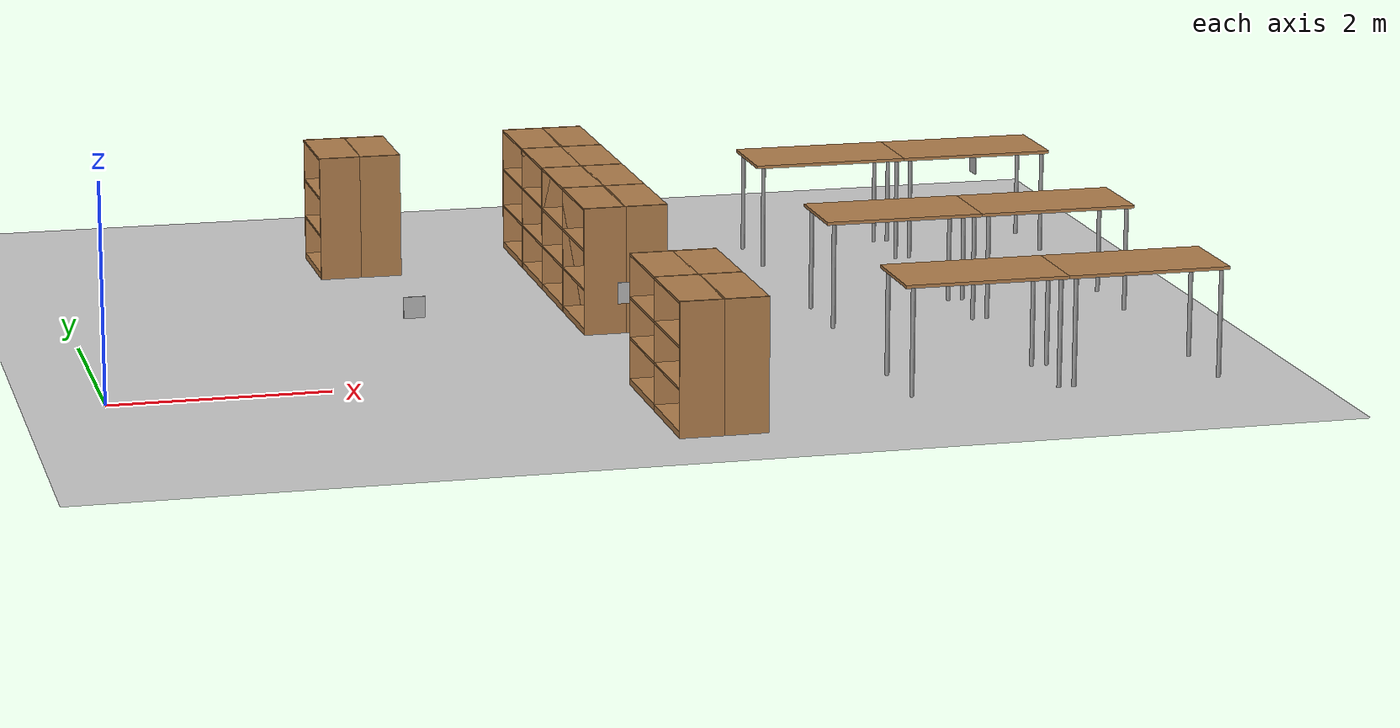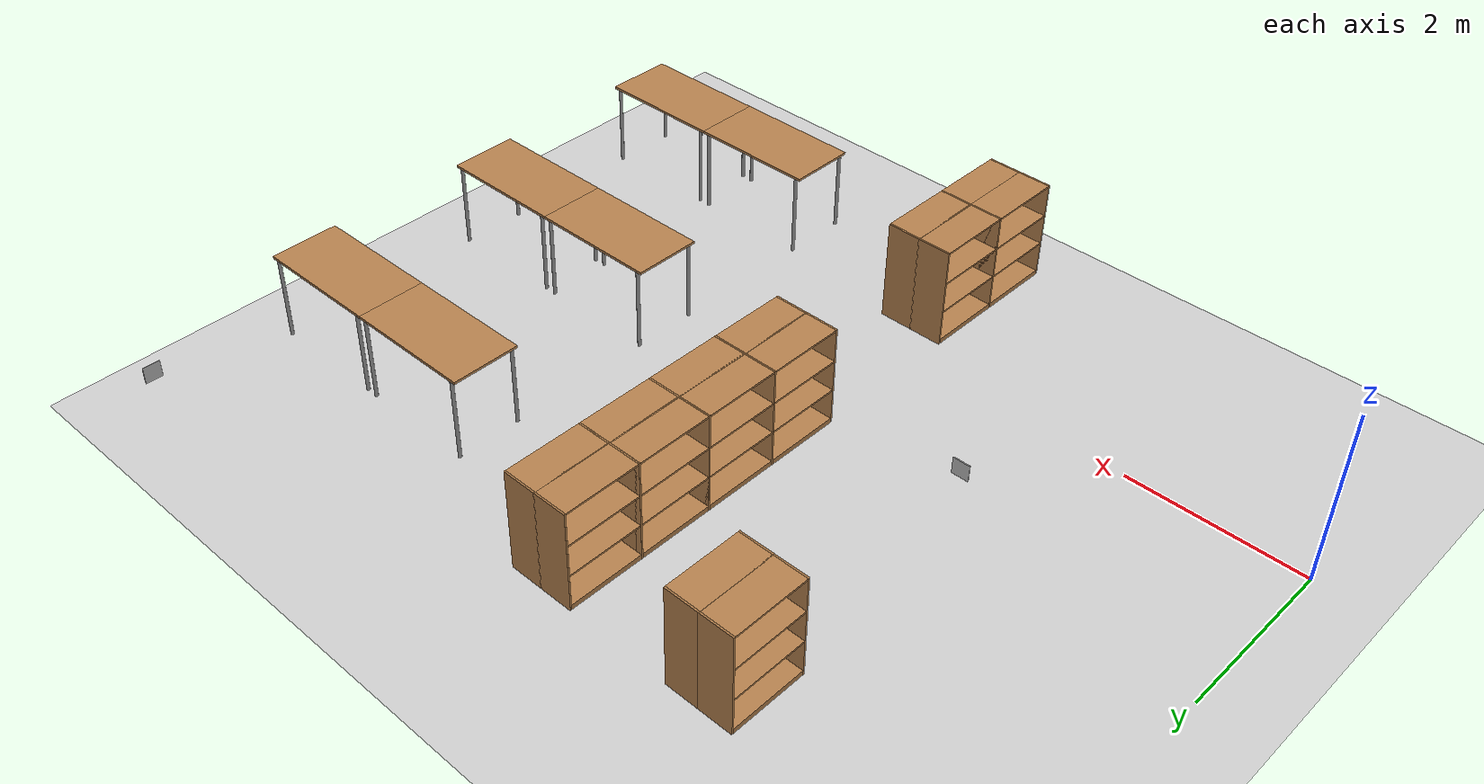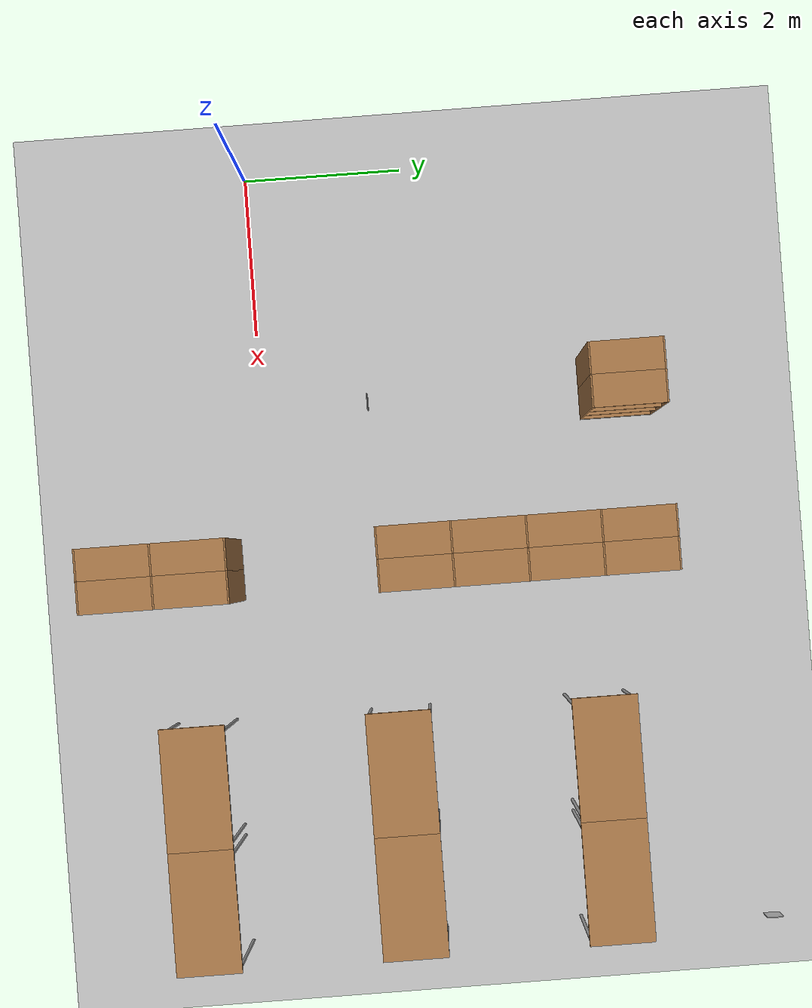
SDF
<sdf version="1.7">
 <world name="default">
  <model name="ground_plane">
   <static>1</static>
   <link name="link">
    <collision name="collision">
     <geometry><plane><normal>0 0 1</normal><size>100 100</size></plane></geometry>
     <surface><friction><ode><mu>100</mu><mu2>50</mu2></ode></friction></surface>
    </collision>
    <visual name="visual">
     <cast_shadows>0</cast_shadows>
     <geometry><plane><normal>0 0 1</normal><size>100 100</size></plane></geometry>
     <material>
      <script><uri>file://media/materials/scripts/gazebo.material</uri><name>Gazebo/Grey</name></script>
     </material>
    </visual>
   </link>
  </model>
  <model name="right_A_0">
   <static>1</static>
   <link name="link">
    <inertial><mass>1</mass></inertial>
    <visual name="visual1">
     <pose>0 0.005 0.6 0 -0 0</pose>
     <geometry><box><size>0.9 0.01 1.2</size></box></geometry>
     <material>
      <script><uri>file://media/materials/scripts/gazebo.material</uri><name>Gazebo/Wood</name></script>
     </material>
    </visual>
    <visual name="visual2">
     <pose>0.45 -0.195 0.6 0 -0 0</pose>
     <geometry><box><size>0.02 0.4 1.2</size></box></geometry>
     <material>
      <script><uri>file://media/materials/scripts/gazebo.material</uri><name>Gazebo/Wood</name></script>
     </material>
    </visual>
    <visual name="visual3">
     <pose>-0.45 -0.195 0.6 0 -0 0</pose>
     <geometry><box><size>0.02 0.4 1.2</size></box></geometry>
     <material>
      <script><uri>file://media/materials/scripts/gazebo.material</uri><name>Gazebo/Wood</name></script>
     </material>
    </visual>
    <visual name="visual4">
     <pose>0 -0.195 0.03 0 -0 0</pose>
     <geometry><box><size>0.88 0.4 0.06</size></box></geometry>
     <material>
      <script><uri>file://media/materials/scripts/gazebo.material</uri><name>Gazebo/Wood</name></script>
     </material>
    </visual>
    <visual name="visual5">
     <pose>0 -0.195 1.19 0 -0 0</pose>
     <geometry><box><size>0.88 0.4 0.02</size></box></geometry>
     <material>
      <script><uri>file://media/materials/scripts/gazebo.material</uri><name>Gazebo/Wood</name></script>
     </material>
    </visual>
    <visual name="visual6">
     <pose>0 -0.195 0.43 0 -0 0</pose>
     <geometry><box><size>0.88 0.4 0.02</size></box></geometry>
     <material>
      <script><uri>file://media/materials/scripts/gazebo.material</uri><name>Gazebo/Wood</name></script>
     </material>
    </visual>
    <visual name="visual7">
     <pose>0 -0.195 0.8 0 -0 0</pose>
     <geometry><box><size>0.88 0.4 0.02</size></box></geometry>
     <material>
      <script><uri>file://media/materials/scripts/gazebo.material</uri><name>Gazebo/Wood</name></script>
     </material>
    </visual>
    <collision name="unified_hitbox">
     <pose>0 -0.1925 0.6 0 -0 0</pose>
     <geometry><box><size>0.92 0.405 1.2</size></box></geometry>
    </collision>
   </link>
   <pose>5 4.55 0 0 -0 1.57</pose>
  </model>
  <model name="right_A_1">
   <static>1</static>
   <link name="link">
    <inertial><mass>1</mass></inertial>
    <visual name="visual1">
     <pose>0 0.005 0.6 0 -0 0</pose>
     <geometry><box><size>0.9 0.01 1.2</size></box></geometry>
     <material>
      <script><uri>file://media/materials/scripts/gazebo.material</uri><name>Gazebo/Wood</name></script>
     </material>
    </visual>
    <visual name="visual2">
     <pose>0.45 -0.195 0.6 0 -0 0</pose>
     <geometry><box><size>0.02 0.4 1.2</size></box></geometry>
     <material>
      <script><uri>file://media/materials/scripts/gazebo.material</uri><name>Gazebo/Wood</name></script>
     </material>
    </visual>
    <visual name="visual3">
     <pose>-0.45 -0.195 0.6 0 -0 0</pose>
     <geometry><box><size>0.02 0.4 1.2</size></box></geometry>
     <material>
      <script><uri>file://media/materials/scripts/gazebo.material</uri><name>Gazebo/Wood</name></script>
     </material>
    </visual>
    <visual name="visual4">
     <pose>0 -0.195 0.03 0 -0 0</pose>
     <geometry><box><size>0.88 0.4 0.06</size></box></geometry>
     <material>
      <script><uri>file://media/materials/scripts/gazebo.material</uri><name>Gazebo/Wood</name></script>
     </material>
    </visual>
    <visual name="visual5">
     <pose>0 -0.195 1.19 0 -0 0</pose>
     <geometry><box><size>0.88 0.4 0.02</size></box></geometry>
     <material>
      <script><uri>file://media/materials/scripts/gazebo.material</uri><name>Gazebo/Wood</name></script>
     </material>
    </visual>
    <visual name="visual6">
     <pose>0 -0.195 0.43 0 -0 0</pose>
     <geometry><box><size>0.88 0.4 0.02</size></box></geometry>
     <material>
      <script><uri>file://media/materials/scripts/gazebo.material</uri><name>Gazebo/Wood</name></script>
     </material>
    </visual>
    <visual name="visual7">
     <pose>0 -0.195 0.8 0 -0 0</pose>
     <geometry><box><size>0.88 0.4 0.02</size></box></geometry>
     <material>
      <script><uri>file://media/materials/scripts/gazebo.material</uri><name>Gazebo/Wood</name></script>
     </material>
    </visual>
    <collision name="unified_hitbox">
     <pose>0 -0.1925 0.6 0 -0 0</pose>
     <geometry><box><size>0.92 0.405 1.2</size></box></geometry>
    </collision>
   </link>
   <pose>5 3.65 0 0 -0 1.57</pose>
  </model>
  <model name="right_A_2">
   <static>1</static>
   <link name="link">
    <inertial><mass>1</mass></inertial>
    <visual name="visual1">
     <pose>0 0.005 0.6 0 -0 0</pose>
     <geometry><box><size>0.9 0.01 1.2</size></box></geometry>
     <material>
      <script><uri>file://media/materials/scripts/gazebo.material</uri><name>Gazebo/Wood</name></script>
     </material>
    </visual>
    <visual name="visual2">
     <pose>0.45 -0.195 0.6 0 -0 0</pose>
     <geometry><box><size>0.02 0.4 1.2</size></box></geometry>
     <material>
      <script><uri>file://media/materials/scripts/gazebo.material</uri><name>Gazebo/Wood</name></script>
     </material>
    </visual>
    <visual name="visual3">
     <pose>-0.45 -0.195 0.6 0 -0 0</pose>
     <geometry><box><size>0.02 0.4 1.2</size></box></geometry>
     <material>
      <script><uri>file://media/materials/scripts/gazebo.material</uri><name>Gazebo/Wood</name></script>
     </material>
    </visual>
    <visual name="visual4">
     <pose>0 -0.195 0.03 0 -0 0</pose>
     <geometry><box><size>0.88 0.4 0.06</size></box></geometry>
     <material>
      <script><uri>file://media/materials/scripts/gazebo.material</uri><name>Gazebo/Wood</name></script>
     </material>
    </visual>
    <visual name="visual5">
     <pose>0 -0.195 1.19 0 -0 0</pose>
     <geometry><box><size>0.88 0.4 0.02</size></box></geometry>
     <material>
      <script><uri>file://media/materials/scripts/gazebo.material</uri><name>Gazebo/Wood</name></script>
     </material>
    </visual>
    <visual name="visual6">
     <pose>0 -0.195 0.43 0 -0 0</pose>
     <geometry><box><size>0.88 0.4 0.02</size></box></geometry>
     <material>
      <script><uri>file://media/materials/scripts/gazebo.material</uri><name>Gazebo/Wood</name></script>
     </material>
    </visual>
    <visual name="visual7">
     <pose>0 -0.195 0.8 0 -0 0</pose>
     <geometry><box><size>0.88 0.4 0.02</size></box></geometry>
     <material>
      <script><uri>file://media/materials/scripts/gazebo.material</uri><name>Gazebo/Wood</name></script>
     </material>
    </visual>
    <collision name="unified_hitbox">
     <pose>0 -0.1925 0.6 0 -0 0</pose>
     <geometry><box><size>0.92 0.405 1.2</size></box></geometry>
    </collision>
   </link>
   <pose>5 2.75 0 0 -0 1.57</pose>
  </model>
  <model name="right_B_0">
   <static>1</static>
   <link name="link">
    <inertial><mass>1</mass></inertial>
    <visual name="visual1">
     <pose>0 0.005 0.6 0 -0 0</pose>
     <geometry><box><size>0.9 0.01 1.2</size></box></geometry>
     <material>
      <script><uri>file://media/materials/scripts/gazebo.material</uri><name>Gazebo/Wood</name></script>
     </material>
    </visual>
    <visual name="visual2">
     <pose>0.45 -0.195 0.6 0 -0 0</pose>
     <geometry><box><size>0.02 0.4 1.2</size></box></geometry>
     <material>
      <script><uri>file://media/materials/scripts/gazebo.material</uri><name>Gazebo/Wood</name></script>
     </material>
    </visual>
    <visual name="visual3">
     <pose>-0.45 -0.195 0.6 0 -0 0</pose>
     <geometry><box><size>0.02 0.4 1.2</size></box></geometry>
     <material>
      <script><uri>file://media/materials/scripts/gazebo.material</uri><name>Gazebo/Wood</name></script>
     </material>
    </visual>
    <visual name="visual4">
     <pose>0 -0.195 0.03 0 -0 0</pose>
     <geometry><box><size>0.88 0.4 0.06</size></box></geometry>
     <material>
      <script><uri>file://media/materials/scripts/gazebo.material</uri><name>Gazebo/Wood</name></script>
     </material>
    </visual>
    <visual name="visual5">
     <pose>0 -0.195 1.19 0 -0 0</pose>
     <geometry><box><size>0.88 0.4 0.02</size></box></geometry>
     <material>
      <script><uri>file://media/materials/scripts/gazebo.material</uri><name>Gazebo/Wood</name></script>
     </material>
    </visual>
    <visual name="visual6">
     <pose>0 -0.195 0.43 0 -0 0</pose>
     <geometry><box><size>0.88 0.4 0.02</size></box></geometry>
     <material>
      <script><uri>file://media/materials/scripts/gazebo.material</uri><name>Gazebo/Wood</name></script>
     </material>
    </visual>
    <visual name="visual7">
     <pose>0 -0.195 0.8 0 -0 0</pose>
     <geometry><box><size>0.88 0.4 0.02</size></box></geometry>
     <material>
      <script><uri>file://media/materials/scripts/gazebo.material</uri><name>Gazebo/Wood</name></script>
     </material>
    </visual>
    <collision name="unified_hitbox">
     <pose>0 -0.1925 0.6 0 -0 0</pose>
     <geometry><box><size>0.92 0.405 1.2</size></box></geometry>
    </collision>
   </link>
   <pose>5 4.55 0 0 0 -1.57</pose>
  </model>
  <model name="right_B_1">
   <static>1</static>
   <link name="link">
    <inertial><mass>1</mass></inertial>
    <visual name="visual1">
     <pose>0 0.005 0.6 0 -0 0</pose>
     <geometry><box><size>0.9 0.01 1.2</size></box></geometry>
     <material>
      <script><uri>file://media/materials/scripts/gazebo.material</uri><name>Gazebo/Wood</name></script>
     </material>
    </visual>
    <visual name="visual2">
     <pose>0.45 -0.195 0.6 0 -0 0</pose>
     <geometry><box><size>0.02 0.4 1.2</size></box></geometry>
     <material>
      <script><uri>file://media/materials/scripts/gazebo.material</uri><name>Gazebo/Wood</name></script>
     </material>
    </visual>
    <visual name="visual3">
     <pose>-0.45 -0.195 0.6 0 -0 0</pose>
     <geometry><box><size>0.02 0.4 1.2</size></box></geometry>
     <material>
      <script><uri>file://media/materials/scripts/gazebo.material</uri><name>Gazebo/Wood</name></script>
     </material>
    </visual>
    <visual name="visual4">
     <pose>0 -0.195 0.03 0 -0 0</pose>
     <geometry><box><size>0.88 0.4 0.06</size></box></geometry>
     <material>
      <script><uri>file://media/materials/scripts/gazebo.material</uri><name>Gazebo/Wood</name></script>
     </material>
    </visual>
    <visual name="visual5">
     <pose>0 -0.195 1.19 0 -0 0</pose>
     <geometry><box><size>0.88 0.4 0.02</size></box></geometry>
     <material>
      <script><uri>file://media/materials/scripts/gazebo.material</uri><name>Gazebo/Wood</name></script>
     </material>
    </visual>
    <visual name="visual6">
     <pose>0 -0.195 0.43 0 -0 0</pose>
     <geometry><box><size>0.88 0.4 0.02</size></box></geometry>
     <material>
      <script><uri>file://media/materials/scripts/gazebo.material</uri><name>Gazebo/Wood</name></script>
     </material>
    </visual>
    <visual name="visual7">
     <pose>0 -0.195 0.8 0 -0 0</pose>
     <geometry><box><size>0.88 0.4 0.02</size></box></geometry>
     <material>
      <script><uri>file://media/materials/scripts/gazebo.material</uri><name>Gazebo/Wood</name></script>
     </material>
    </visual>
    <collision name="unified_hitbox">
     <pose>0 -0.1925 0.6 0 -0 0</pose>
     <geometry><box><size>0.92 0.405 1.2</size></box></geometry>
    </collision>
   </link>
   <pose>5 3.65 0 0 0 -1.57</pose>
  </model>
  <model name="right_B_2">
   <static>1</static>
   <link name="link">
    <inertial><mass>1</mass></inertial>
    <visual name="visual1">
     <pose>0 0.005 0.6 0 -0 0</pose>
     <geometry><box><size>0.9 0.01 1.2</size></box></geometry>
     <material>
      <script><uri>file://media/materials/scripts/gazebo.material</uri><name>Gazebo/Wood</name></script>
     </material>
    </visual>
    <visual name="visual2">
     <pose>0.45 -0.195 0.6 0 -0 0</pose>
     <geometry><box><size>0.02 0.4 1.2</size></box></geometry>
     <material>
      <script><uri>file://media/materials/scripts/gazebo.material</uri><name>Gazebo/Wood</name></script>
     </material>
    </visual>
    <visual name="visual3">
     <pose>-0.45 -0.195 0.6 0 -0 0</pose>
     <geometry><box><size>0.02 0.4 1.2</size></box></geometry>
     <material>
      <script><uri>file://media/materials/scripts/gazebo.material</uri><name>Gazebo/Wood</name></script>
     </material>
    </visual>
    <visual name="visual4">
     <pose>0 -0.195 0.03 0 -0 0</pose>
     <geometry><box><size>0.88 0.4 0.06</size></box></geometry>
     <material>
      <script><uri>file://media/materials/scripts/gazebo.material</uri><name>Gazebo/Wood</name></script>
     </material>
    </visual>
    <visual name="visual5">
     <pose>0 -0.195 1.19 0 -0 0</pose>
     <geometry><box><size>0.88 0.4 0.02</size></box></geometry>
     <material>
      <script><uri>file://media/materials/scripts/gazebo.material</uri><name>Gazebo/Wood</name></script>
     </material>
    </visual>
    <visual name="visual6">
     <pose>0 -0.195 0.43 0 -0 0</pose>
     <geometry><box><size>0.88 0.4 0.02</size></box></geometry>
     <material>
      <script><uri>file://media/materials/scripts/gazebo.material</uri><name>Gazebo/Wood</name></script>
     </material>
    </visual>
    <visual name="visual7">
     <pose>0 -0.195 0.8 0 -0 0</pose>
     <geometry><box><size>0.88 0.4 0.02</size></box></geometry>
     <material>
      <script><uri>file://media/materials/scripts/gazebo.material</uri><name>Gazebo/Wood</name></script>
     </material>
    </visual>
    <collision name="unified_hitbox">
     <pose>0 -0.1925 0.6 0 -0 0</pose>
     <geometry><box><size>0.92 0.405 1.2</size></box></geometry>
    </collision>
   </link>
   <pose>5 2.75 0 0 0 -1.57</pose>
  </model>
  <model name="sec3_A_0">
   <static>1</static>
   <link name="link">
    <inertial><mass>1</mass></inertial>
    <visual name="visual1">
     <pose>0 0.005 0.6 0 -0 0</pose>
     <geometry><box><size>0.9 0.01 1.2</size></box></geometry>
     <material>
      <script><uri>file://media/materials/scripts/gazebo.material</uri><name>Gazebo/Wood</name></script>
     </material>
    </visual>
    <visual name="visual2">
     <pose>0.45 -0.195 0.6 0 -0 0</pose>
     <geometry><box><size>0.02 0.4 1.2</size></box></geometry>
     <material>
      <script><uri>file://media/materials/scripts/gazebo.material</uri><name>Gazebo/Wood</name></script>
     </material>
    </visual>
    <visual name="visual3">
     <pose>-0.45 -0.195 0.6 0 -0 0</pose>
     <geometry><box><size>0.02 0.4 1.2</size></box></geometry>
     <material>
      <script><uri>file://media/materials/scripts/gazebo.material</uri><name>Gazebo/Wood</name></script>
     </material>
    </visual>
    <visual name="visual4">
     <pose>0 -0.195 0.03 0 -0 0</pose>
     <geometry><box><size>0.88 0.4 0.06</size></box></geometry>
     <material>
      <script><uri>file://media/materials/scripts/gazebo.material</uri><name>Gazebo/Wood</name></script>
     </material>
    </visual>
    <visual name="visual5">
     <pose>0 -0.195 1.19 0 -0 0</pose>
     <geometry><box><size>0.88 0.4 0.02</size></box></geometry>
     <material>
      <script><uri>file://media/materials/scripts/gazebo.material</uri><name>Gazebo/Wood</name></script>
     </material>
    </visual>
    <visual name="visual6">
     <pose>0 -0.195 0.43 0 -0 0</pose>
     <geometry><box><size>0.88 0.4 0.02</size></box></geometry>
     <material>
      <script><uri>file://media/materials/scripts/gazebo.material</uri><name>Gazebo/Wood</name></script>
     </material>
    </visual>
    <visual name="visual7">
     <pose>0 -0.195 0.8 0 -0 0</pose>
     <geometry><box><size>0.88 0.4 0.02</size></box></geometry>
     <material>
      <script><uri>file://media/materials/scripts/gazebo.material</uri><name>Gazebo/Wood</name></script>
     </material>
    </visual>
    <collision name="unified_hitbox">
     <pose>0 -0.1925 0.6 0 -0 0</pose>
     <geometry><box><size>0.92 0.405 1.2</size></box></geometry>
    </collision>
   </link>
   <pose>3 4.55 0 0 -0 1.57</pose>
  </model>
  <model name="sec3_B_0">
   <static>1</static>
   <link name="link">
    <inertial><mass>1</mass></inertial>
    <visual name="visual1">
     <pose>0 0.005 0.6 0 -0 0</pose>
     <geometry><box><size>0.9 0.01 1.2</size></box></geometry>
     <material>
      <script><uri>file://media/materials/scripts/gazebo.material</uri><name>Gazebo/Wood</name></script>
     </material>
    </visual>
    <visual name="visual2">
     <pose>0.45 -0.195 0.6 0 -0 0</pose>
     <geometry><box><size>0.02 0.4 1.2</size></box></geometry>
     <material>
      <script><uri>file://media/materials/scripts/gazebo.material</uri><name>Gazebo/Wood</name></script>
     </material>
    </visual>
    <visual name="visual3">
     <pose>-0.45 -0.195 0.6 0 -0 0</pose>
     <geometry><box><size>0.02 0.4 1.2</size></box></geometry>
     <material>
      <script><uri>file://media/materials/scripts/gazebo.material</uri><name>Gazebo/Wood</name></script>
     </material>
    </visual>
    <visual name="visual4">
     <pose>0 -0.195 0.03 0 -0 0</pose>
     <geometry><box><size>0.88 0.4 0.06</size></box></geometry>
     <material>
      <script><uri>file://media/materials/scripts/gazebo.material</uri><name>Gazebo/Wood</name></script>
     </material>
    </visual>
    <visual name="visual5">
     <pose>0 -0.195 1.19 0 -0 0</pose>
     <geometry><box><size>0.88 0.4 0.02</size></box></geometry>
     <material>
      <script><uri>file://media/materials/scripts/gazebo.material</uri><name>Gazebo/Wood</name></script>
     </material>
    </visual>
    <visual name="visual6">
     <pose>0 -0.195 0.43 0 -0 0</pose>
     <geometry><box><size>0.88 0.4 0.02</size></box></geometry>
     <material>
      <script><uri>file://media/materials/scripts/gazebo.material</uri><name>Gazebo/Wood</name></script>
     </material>
    </visual>
    <visual name="visual7">
     <pose>0 -0.195 0.8 0 -0 0</pose>
     <geometry><box><size>0.88 0.4 0.02</size></box></geometry>
     <material>
      <script><uri>file://media/materials/scripts/gazebo.material</uri><name>Gazebo/Wood</name></script>
     </material>
    </visual>
    <collision name="unified_hitbox">
     <pose>0 -0.1925 0.6 0 -0 0</pose>
     <geometry><box><size>0.92 0.405 1.2</size></box></geometry>
    </collision>
   </link>
   <pose>3 4.55 0 0 0 -1.57</pose>
  </model>
  <model name="right_A_3">
   <static>1</static>
   <link name="link">
    <inertial><mass>1</mass></inertial>
    <visual name="visual1">
     <pose>0 0.005 0.6 0 -0 0</pose>
     <geometry><box><size>0.9 0.01 1.2</size></box></geometry>
     <material>
      <script><uri>file://media/materials/scripts/gazebo.material</uri><name>Gazebo/Wood</name></script>
     </material>
    </visual>
    <visual name="visual2">
     <pose>0.45 -0.195 0.6 0 -0 0</pose>
     <geometry><box><size>0.02 0.4 1.2</size></box></geometry>
     <material>
      <script><uri>file://media/materials/scripts/gazebo.material</uri><name>Gazebo/Wood</name></script>
     </material>
    </visual>
    <visual name="visual3">
     <pose>-0.45 -0.195 0.6 0 -0 0</pose>
     <geometry><box><size>0.02 0.4 1.2</size></box></geometry>
     <material>
      <script><uri>file://media/materials/scripts/gazebo.material</uri><name>Gazebo/Wood</name></script>
     </material>
    </visual>
    <visual name="visual4">
     <pose>0 -0.195 0.03 0 -0 0</pose>
     <geometry><box><size>0.88 0.4 0.06</size></box></geometry>
     <material>
      <script><uri>file://media/materials/scripts/gazebo.material</uri><name>Gazebo/Wood</name></script>
     </material>
    </visual>
    <visual name="visual5">
     <pose>0 -0.195 1.19 0 -0 0</pose>
     <geometry><box><size>0.88 0.4 0.02</size></box></geometry>
     <material>
      <script><uri>file://media/materials/scripts/gazebo.material</uri><name>Gazebo/Wood</name></script>
     </material>
    </visual>
    <visual name="visual6">
     <pose>0 -0.195 0.43 0 -0 0</pose>
     <geometry><box><size>0.88 0.4 0.02</size></box></geometry>
     <material>
      <script><uri>file://media/materials/scripts/gazebo.material</uri><name>Gazebo/Wood</name></script>
     </material>
    </visual>
    <visual name="visual7">
     <pose>0 -0.195 0.8 0 -0 0</pose>
     <geometry><box><size>0.88 0.4 0.02</size></box></geometry>
     <material>
      <script><uri>file://media/materials/scripts/gazebo.material</uri><name>Gazebo/Wood</name></script>
     </material>
    </visual>
    <collision name="unified_hitbox">
     <pose>0 -0.1925 0.6 0 -0 0</pose>
     <geometry><box><size>0.92 0.405 1.2</size></box></geometry>
    </collision>
   </link>
   <pose>5 1.85 0 0 -0 1.57</pose>
  </model>
  <model name="right_B_3">
   <static>1</static>
   <link name="link">
    <inertial><mass>1</mass></inertial>
    <visual name="visual1">
     <pose>0 0.005 0.6 0 -0 0</pose>
     <geometry><box><size>0.9 0.01 1.2</size></box></geometry>
     <material>
      <script><uri>file://media/materials/scripts/gazebo.material</uri><name>Gazebo/Wood</name></script>
     </material>
    </visual>
    <visual name="visual2">
     <pose>0.45 -0.195 0.6 0 -0 0</pose>
     <geometry><box><size>0.02 0.4 1.2</size></box></geometry>
     <material>
      <script><uri>file://media/materials/scripts/gazebo.material</uri><name>Gazebo/Wood</name></script>
     </material>
    </visual>
    <visual name="visual3">
     <pose>-0.45 -0.195 0.6 0 -0 0</pose>
     <geometry><box><size>0.02 0.4 1.2</size></box></geometry>
     <material>
      <script><uri>file://media/materials/scripts/gazebo.material</uri><name>Gazebo/Wood</name></script>
     </material>
    </visual>
    <visual name="visual4">
     <pose>0 -0.195 0.03 0 -0 0</pose>
     <geometry><box><size>0.88 0.4 0.06</size></box></geometry>
     <material>
      <script><uri>file://media/materials/scripts/gazebo.material</uri><name>Gazebo/Wood</name></script>
     </material>
    </visual>
    <visual name="visual5">
     <pose>0 -0.195 1.19 0 -0 0</pose>
     <geometry><box><size>0.88 0.4 0.02</size></box></geometry>
     <material>
      <script><uri>file://media/materials/scripts/gazebo.material</uri><name>Gazebo/Wood</name></script>
     </material>
    </visual>
    <visual name="visual6">
     <pose>0 -0.195 0.43 0 -0 0</pose>
     <geometry><box><size>0.88 0.4 0.02</size></box></geometry>
     <material>
      <script><uri>file://media/materials/scripts/gazebo.material</uri><name>Gazebo/Wood</name></script>
     </material>
    </visual>
    <visual name="visual7">
     <pose>0 -0.195 0.8 0 -0 0</pose>
     <geometry><box><size>0.88 0.4 0.02</size></box></geometry>
     <material>
      <script><uri>file://media/materials/scripts/gazebo.material</uri><name>Gazebo/Wood</name></script>
     </material>
    </visual>
    <collision name="unified_hitbox">
     <pose>0 -0.1925 0.6 0 -0 0</pose>
     <geometry><box><size>0.92 0.405 1.2</size></box></geometry>
    </collision>
   </link>
   <pose>5 1.85 0 0 0 -1.57</pose>
  </model>
  <model name="bot_sec5_A_0">
   <static>1</static>
   <link name="link">
    <inertial><mass>1</mass></inertial>
    <visual name="visual1">
     <pose>0 0.005 0.6 0 -0 0</pose>
     <geometry><box><size>0.9 0.01 1.2</size></box></geometry>
     <material>
      <script><uri>file://media/materials/scripts/gazebo.material</uri><name>Gazebo/Wood</name></script>
     </material>
    </visual>
    <visual name="visual2">
     <pose>0.45 -0.195 0.6 0 -0 0</pose>
     <geometry><box><size>0.02 0.4 1.2</size></box></geometry>
     <material>
      <script><uri>file://media/materials/scripts/gazebo.material</uri><name>Gazebo/Wood</name></script>
     </material>
    </visual>
    <visual name="visual3">
     <pose>-0.45 -0.195 0.6 0 -0 0</pose>
     <geometry><box><size>0.02 0.4 1.2</size></box></geometry>
     <material>
      <script><uri>file://media/materials/scripts/gazebo.material</uri><name>Gazebo/Wood</name></script>
     </material>
    </visual>
    <visual name="visual4">
     <pose>0 -0.195 0.03 0 -0 0</pose>
     <geometry><box><size>0.88 0.4 0.06</size></box></geometry>
     <material>
      <script><uri>file://media/materials/scripts/gazebo.material</uri><name>Gazebo/Wood</name></script>
     </material>
    </visual>
    <visual name="visual5">
     <pose>0 -0.195 1.19 0 -0 0</pose>
     <geometry><box><size>0.88 0.4 0.02</size></box></geometry>
     <material>
      <script><uri>file://media/materials/scripts/gazebo.material</uri><name>Gazebo/Wood</name></script>
     </material>
    </visual>
    <visual name="visual6">
     <pose>0 -0.195 0.43 0 -0 0</pose>
     <geometry><box><size>0.88 0.4 0.02</size></box></geometry>
     <material>
      <script><uri>file://media/materials/scripts/gazebo.material</uri><name>Gazebo/Wood</name></script>
     </material>
    </visual>
    <visual name="visual7">
     <pose>0 -0.195 0.8 0 -0 0</pose>
     <geometry><box><size>0.88 0.4 0.02</size></box></geometry>
     <material>
      <script><uri>file://media/materials/scripts/gazebo.material</uri><name>Gazebo/Wood</name></script>
     </material>
    </visual>
    <collision name="unified_hitbox">
     <pose>0 -0.1925 0.6 0 -0 0</pose>
     <geometry><box><size>0.92 0.405 1.2</size></box></geometry>
    </collision>
   </link>
   <pose>5 -0.85 0 0 -0 1.57</pose>
  </model>
  <model name="bot_sec5_B_0">
   <static>1</static>
   <link name="link">
    <inertial><mass>1</mass></inertial>
    <visual name="visual1">
     <pose>0 0.005 0.6 0 -0 0</pose>
     <geometry><box><size>0.9 0.01 1.2</size></box></geometry>
     <material>
      <script><uri>file://media/materials/scripts/gazebo.material</uri><name>Gazebo/Wood</name></script>
     </material>
    </visual>
    <visual name="visual2">
     <pose>0.45 -0.195 0.6 0 -0 0</pose>
     <geometry><box><size>0.02 0.4 1.2</size></box></geometry>
     <material>
      <script><uri>file://media/materials/scripts/gazebo.material</uri><name>Gazebo/Wood</name></script>
     </material>
    </visual>
    <visual name="visual3">
     <pose>-0.45 -0.195 0.6 0 -0 0</pose>
     <geometry><box><size>0.02 0.4 1.2</size></box></geometry>
     <material>
      <script><uri>file://media/materials/scripts/gazebo.material</uri><name>Gazebo/Wood</name></script>
     </material>
    </visual>
    <visual name="visual4">
     <pose>0 -0.195 0.03 0 -0 0</pose>
     <geometry><box><size>0.88 0.4 0.06</size></box></geometry>
     <material>
      <script><uri>file://media/materials/scripts/gazebo.material</uri><name>Gazebo/Wood</name></script>
     </material>
    </visual>
    <visual name="visual5">
     <pose>0 -0.195 1.19 0 -0 0</pose>
     <geometry><box><size>0.88 0.4 0.02</size></box></geometry>
     <material>
      <script><uri>file://media/materials/scripts/gazebo.material</uri><name>Gazebo/Wood</name></script>
     </material>
    </visual>
    <visual name="visual6">
     <pose>0 -0.195 0.43 0 -0 0</pose>
     <geometry><box><size>0.88 0.4 0.02</size></box></geometry>
     <material>
      <script><uri>file://media/materials/scripts/gazebo.material</uri><name>Gazebo/Wood</name></script>
     </material>
    </visual>
    <visual name="visual7">
     <pose>0 -0.195 0.8 0 -0 0</pose>
     <geometry><box><size>0.88 0.4 0.02</size></box></geometry>
     <material>
      <script><uri>file://media/materials/scripts/gazebo.material</uri><name>Gazebo/Wood</name></script>
     </material>
    </visual>
    <collision name="unified_hitbox">
     <pose>0 -0.1925 0.6 0 -0 0</pose>
     <geometry><box><size>0.92 0.405 1.2</size></box></geometry>
    </collision>
   </link>
   <pose>5 -0.85 0 0 0 -1.57</pose>
  </model>
  <model name="bot_sec5_A_1">
   <static>1</static>
   <link name="link">
    <inertial><mass>1</mass></inertial>
    <visual name="visual1">
     <pose>0 0.005 0.6 0 -0 0</pose>
     <geometry><box><size>0.9 0.01 1.2</size></box></geometry>
     <material>
      <script><uri>file://media/materials/scripts/gazebo.material</uri><name>Gazebo/Wood</name></script>
     </material>
    </visual>
    <visual name="visual2">
     <pose>0.45 -0.195 0.6 0 -0 0</pose>
     <geometry><box><size>0.02 0.4 1.2</size></box></geometry>
     <material>
      <script><uri>file://media/materials/scripts/gazebo.material</uri><name>Gazebo/Wood</name></script>
     </material>
    </visual>
    <visual name="visual3">
     <pose>-0.45 -0.195 0.6 0 -0 0</pose>
     <geometry><box><size>0.02 0.4 1.2</size></box></geometry>
     <material>
      <script><uri>file://media/materials/scripts/gazebo.material</uri><name>Gazebo/Wood</name></script>
     </material>
    </visual>
    <visual name="visual4">
     <pose>0 -0.195 0.03 0 -0 0</pose>
     <geometry><box><size>0.88 0.4 0.06</size></box></geometry>
     <material>
      <script><uri>file://media/materials/scripts/gazebo.material</uri><name>Gazebo/Wood</name></script>
     </material>
    </visual>
    <visual name="visual5">
     <pose>0 -0.195 1.19 0 -0 0</pose>
     <geometry><box><size>0.88 0.4 0.02</size></box></geometry>
     <material>
      <script><uri>file://media/materials/scripts/gazebo.material</uri><name>Gazebo/Wood</name></script>
     </material>
    </visual>
    <visual name="visual6">
     <pose>0 -0.195 0.43 0 -0 0</pose>
     <geometry><box><size>0.88 0.4 0.02</size></box></geometry>
     <material>
      <script><uri>file://media/materials/scripts/gazebo.material</uri><name>Gazebo/Wood</name></script>
     </material>
    </visual>
    <visual name="visual7">
     <pose>0 -0.195 0.8 0 -0 0</pose>
     <geometry><box><size>0.88 0.4 0.02</size></box></geometry>
     <material>
      <script><uri>file://media/materials/scripts/gazebo.material</uri><name>Gazebo/Wood</name></script>
     </material>
    </visual>
    <collision name="unified_hitbox">
     <pose>0 -0.1925 0.6 0 -0 0</pose>
     <geometry><box><size>0.92 0.405 1.2</size></box></geometry>
    </collision>
   </link>
   <pose>5 -1.75 0 0 -0 1.57</pose>
  </model>
  <model name="bot_sec5_B_1">
   <static>1</static>
   <link name="link">
    <inertial><mass>1</mass></inertial>
    <visual name="visual1">
     <pose>0 0.005 0.6 0 -0 0</pose>
     <geometry><box><size>0.9 0.01 1.2</size></box></geometry>
     <material>
      <script><uri>file://media/materials/scripts/gazebo.material</uri><name>Gazebo/Wood</name></script>
     </material>
    </visual>
    <visual name="visual2">
     <pose>0.45 -0.195 0.6 0 -0 0</pose>
     <geometry><box><size>0.02 0.4 1.2</size></box></geometry>
     <material>
      <script><uri>file://media/materials/scripts/gazebo.material</uri><name>Gazebo/Wood</name></script>
     </material>
    </visual>
    <visual name="visual3">
     <pose>-0.45 -0.195 0.6 0 -0 0</pose>
     <geometry><box><size>0.02 0.4 1.2</size></box></geometry>
     <material>
      <script><uri>file://media/materials/scripts/gazebo.material</uri><name>Gazebo/Wood</name></script>
     </material>
    </visual>
    <visual name="visual4">
     <pose>0 -0.195 0.03 0 -0 0</pose>
     <geometry><box><size>0.88 0.4 0.06</size></box></geometry>
     <material>
      <script><uri>file://media/materials/scripts/gazebo.material</uri><name>Gazebo/Wood</name></script>
     </material>
    </visual>
    <visual name="visual5">
     <pose>0 -0.195 1.19 0 -0 0</pose>
     <geometry><box><size>0.88 0.4 0.02</size></box></geometry>
     <material>
      <script><uri>file://media/materials/scripts/gazebo.material</uri><name>Gazebo/Wood</name></script>
     </material>
    </visual>
    <visual name="visual6">
     <pose>0 -0.195 0.43 0 -0 0</pose>
     <geometry><box><size>0.88 0.4 0.02</size></box></geometry>
     <material>
      <script><uri>file://media/materials/scripts/gazebo.material</uri><name>Gazebo/Wood</name></script>
     </material>
    </visual>
    <visual name="visual7">
     <pose>0 -0.195 0.8 0 -0 0</pose>
     <geometry><box><size>0.88 0.4 0.02</size></box></geometry>
     <material>
      <script><uri>file://media/materials/scripts/gazebo.material</uri><name>Gazebo/Wood</name></script>
     </material>
    </visual>
    <collision name="unified_hitbox">
     <pose>0 -0.1925 0.6 0 -0 0</pose>
     <geometry><box><size>0.92 0.405 1.2</size></box></geometry>
    </collision>
   </link>
   <pose>5 -1.75 0 0 0 -1.57</pose>
  </model>
  <model name="right_bank_1_out">
   <static>1</static>
   <link name="link">
    <visual name="visual1">
     <pose>0 0 1 0 -0 0</pose>
     <geometry><box><size>1.5 0.8 0.03</size></box></geometry>
     <material>
      <script><uri>file://media/materials/scripts/gazebo.material</uri><name>Gazebo/Wood</name></script>
     </material>
    </visual>
    <visual name="front_left_leg">
     <pose>0.68 0.38 0.5 0 -0 0</pose>
     <geometry><cylinder><radius>0.02</radius><length>1</length></cylinder></geometry>
     <material>
      <script><uri>file://media/materials/scripts/gazebo.material</uri><name>Gazebo/Grey</name></script>
     </material>
    </visual>
    <visual name="front_right_leg">
     <pose>0.68 -0.38 0.5 0 -0 0</pose>
     <geometry><cylinder><radius>0.02</radius><length>1</length></cylinder></geometry>
     <material>
      <script><uri>file://media/materials/scripts/gazebo.material</uri><name>Gazebo/Grey</name></script>
     </material>
    </visual>
    <visual name="back_right_leg">
     <pose>-0.68 -0.38 0.5 0 -0 0</pose>
     <geometry><cylinder><radius>0.02</radius><length>1</length></cylinder></geometry>
     <material>
      <script><uri>file://media/materials/scripts/gazebo.material</uri><name>Gazebo/Grey</name></script>
     </material>
    </visual>
    <visual name="back_left_leg">
     <pose>-0.68 0.38 0.5 0 -0 0</pose>
     <geometry><cylinder><radius>0.02</radius><length>1</length></cylinder></geometry>
     <material>
      <script><uri>file://media/materials/scripts/gazebo.material</uri><name>Gazebo/Grey</name></script>
     </material>
    </visual>
    <collision name="unified_hitbox">
     <pose>0 0 0.5075 0 -0 0</pose>
     <geometry><box><size>1.5 0.8 1.015</size></box></geometry>
    </collision>
   </link>
   <pose>7.6 4 0 0 -0 0</pose>
  </model>
  <model name="right_bank_1_in">
   <static>1</static>
   <link name="link">
    <visual name="visual1">
     <pose>0 0 1 0 -0 0</pose>
     <geometry><box><size>1.5 0.8 0.03</size></box></geometry>
     <material>
      <script><uri>file://media/materials/scripts/gazebo.material</uri><name>Gazebo/Wood</name></script>
     </material>
    </visual>
    <visual name="front_left_leg">
     <pose>0.68 0.38 0.5 0 -0 0</pose>
     <geometry><cylinder><radius>0.02</radius><length>1</length></cylinder></geometry>
     <material>
      <script><uri>file://media/materials/scripts/gazebo.material</uri><name>Gazebo/Grey</name></script>
     </material>
    </visual>
    <visual name="front_right_leg">
     <pose>0.68 -0.38 0.5 0 -0 0</pose>
     <geometry><cylinder><radius>0.02</radius><length>1</length></cylinder></geometry>
     <material>
      <script><uri>file://media/materials/scripts/gazebo.material</uri><name>Gazebo/Grey</name></script>
     </material>
    </visual>
    <visual name="back_right_leg">
     <pose>-0.68 -0.38 0.5 0 -0 0</pose>
     <geometry><cylinder><radius>0.02</radius><length>1</length></cylinder></geometry>
     <material>
      <script><uri>file://media/materials/scripts/gazebo.material</uri><name>Gazebo/Grey</name></script>
     </material>
    </visual>
    <visual name="back_left_leg">
     <pose>-0.68 0.38 0.5 0 -0 0</pose>
     <geometry><cylinder><radius>0.02</radius><length>1</length></cylinder></geometry>
     <material>
      <script><uri>file://media/materials/scripts/gazebo.material</uri><name>Gazebo/Grey</name></script>
     </material>
    </visual>
    <collision name="unified_hitbox">
     <pose>0 0 0.5075 0 -0 0</pose>
     <geometry><box><size>1.5 0.8 1.015</size></box></geometry>
    </collision>
   </link>
   <pose>9.1 4 0 0 -0 0</pose>
  </model>
  <model name="right_bank_2_out">
   <static>1</static>
   <link name="link">
    <visual name="visual1">
     <pose>0 0 1 0 -0 0</pose>
     <geometry><box><size>1.5 0.8 0.03</size></box></geometry>
     <material>
      <script><uri>file://media/materials/scripts/gazebo.material</uri><name>Gazebo/Wood</name></script>
     </material>
    </visual>
    <visual name="front_left_leg">
     <pose>0.68 0.38 0.5 0 -0 0</pose>
     <geometry><cylinder><radius>0.02</radius><length>1</length></cylinder></geometry>
     <material>
      <script><uri>file://media/materials/scripts/gazebo.material</uri><name>Gazebo/Grey</name></script>
     </material>
    </visual>
    <visual name="front_right_leg">
     <pose>0.68 -0.38 0.5 0 -0 0</pose>
     <geometry><cylinder><radius>0.02</radius><length>1</length></cylinder></geometry>
     <material>
      <script><uri>file://media/materials/scripts/gazebo.material</uri><name>Gazebo/Grey</name></script>
     </material>
    </visual>
    <visual name="back_right_leg">
     <pose>-0.68 -0.38 0.5 0 -0 0</pose>
     <geometry><cylinder><radius>0.02</radius><length>1</length></cylinder></geometry>
     <material>
      <script><uri>file://media/materials/scripts/gazebo.material</uri><name>Gazebo/Grey</name></script>
     </material>
    </visual>
    <visual name="back_left_leg">
     <pose>-0.68 0.38 0.5 0 -0 0</pose>
     <geometry><cylinder><radius>0.02</radius><length>1</length></cylinder></geometry>
     <material>
      <script><uri>file://media/materials/scripts/gazebo.material</uri><name>Gazebo/Grey</name></script>
     </material>
    </visual>
    <collision name="unified_hitbox">
     <pose>0 0 0.5075 0 -0 0</pose>
     <geometry><box><size>1.5 0.8 1.015</size></box></geometry>
    </collision>
   </link>
   <pose>7.6 1.5 0 0 -0 0</pose>
  </model>
  <model name="right_bank_2_in">
   <static>1</static>
   <link name="link">
    <visual name="visual1">
     <pose>0 0 1 0 -0 0</pose>
     <geometry><box><size>1.5 0.8 0.03</size></box></geometry>
     <material>
      <script><uri>file://media/materials/scripts/gazebo.material</uri><name>Gazebo/Wood</name></script>
     </material>
    </visual>
    <visual name="front_left_leg">
     <pose>0.68 0.38 0.5 0 -0 0</pose>
     <geometry><cylinder><radius>0.02</radius><length>1</length></cylinder></geometry>
     <material>
      <script><uri>file://media/materials/scripts/gazebo.material</uri><name>Gazebo/Grey</name></script>
     </material>
    </visual>
    <visual name="front_right_leg">
     <pose>0.68 -0.38 0.5 0 -0 0</pose>
     <geometry><cylinder><radius>0.02</radius><length>1</length></cylinder></geometry>
     <material>
      <script><uri>file://media/materials/scripts/gazebo.material</uri><name>Gazebo/Grey</name></script>
     </material>
    </visual>
    <visual name="back_right_leg">
     <pose>-0.68 -0.38 0.5 0 -0 0</pose>
     <geometry><cylinder><radius>0.02</radius><length>1</length></cylinder></geometry>
     <material>
      <script><uri>file://media/materials/scripts/gazebo.material</uri><name>Gazebo/Grey</name></script>
     </material>
    </visual>
    <visual name="back_left_leg">
     <pose>-0.68 0.38 0.5 0 -0 0</pose>
     <geometry><cylinder><radius>0.02</radius><length>1</length></cylinder></geometry>
     <material>
      <script><uri>file://media/materials/scripts/gazebo.material</uri><name>Gazebo/Grey</name></script>
     </material>
    </visual>
    <collision name="unified_hitbox">
     <pose>0 0 0.5075 0 -0 0</pose>
     <geometry><box><size>1.5 0.8 1.015</size></box></geometry>
    </collision>
   </link>
   <pose>9.1 1.5 0 0 -0 0</pose>
  </model>
  <model name="right_bank_3_out">
   <static>1</static>
   <link name="link">
    <visual name="visual1">
     <pose>0 0 1 0 -0 0</pose>
     <geometry><box><size>1.5 0.8 0.03</size></box></geometry>
     <material>
      <script><uri>file://media/materials/scripts/gazebo.material</uri><name>Gazebo/Wood</name></script>
     </material>
    </visual>
    <visual name="front_left_leg">
     <pose>0.68 0.38 0.5 0 -0 0</pose>
     <geometry><cylinder><radius>0.02</radius><length>1</length></cylinder></geometry>
     <material>
      <script><uri>file://media/materials/scripts/gazebo.material</uri><name>Gazebo/Grey</name></script>
     </material>
    </visual>
    <visual name="front_right_leg">
     <pose>0.68 -0.38 0.5 0 -0 0</pose>
     <geometry><cylinder><radius>0.02</radius><length>1</length></cylinder></geometry>
     <material>
      <script><uri>file://media/materials/scripts/gazebo.material</uri><name>Gazebo/Grey</name></script>
     </material>
    </visual>
    <visual name="back_right_leg">
     <pose>-0.68 -0.38 0.5 0 -0 0</pose>
     <geometry><cylinder><radius>0.02</radius><length>1</length></cylinder></geometry>
     <material>
      <script><uri>file://media/materials/scripts/gazebo.material</uri><name>Gazebo/Grey</name></script>
     </material>
    </visual>
    <visual name="back_left_leg">
     <pose>-0.68 0.38 0.5 0 -0 0</pose>
     <geometry><cylinder><radius>0.02</radius><length>1</length></cylinder></geometry>
     <material>
      <script><uri>file://media/materials/scripts/gazebo.material</uri><name>Gazebo/Grey</name></script>
     </material>
    </visual>
    <collision name="unified_hitbox">
     <pose>0 0 0.5075 0 -0 0</pose>
     <geometry><box><size>1.5 0.8 1.015</size></box></geometry>
    </collision>
   </link>
   <pose>7.6 -1 0 0 -0 0</pose>
  </model>
  <model name="right_bank_3_in">
   <static>1</static>
   <link name="link">
    <visual name="visual1">
     <pose>0 0 1 0 -0 0</pose>
     <geometry><box><size>1.5 0.8 0.03</size></box></geometry>
     <material>
      <script><uri>file://media/materials/scripts/gazebo.material</uri><name>Gazebo/Wood</name></script>
     </material>
    </visual>
    <visual name="front_left_leg">
     <pose>0.68 0.38 0.5 0 -0 0</pose>
     <geometry><cylinder><radius>0.02</radius><length>1</length></cylinder></geometry>
     <material>
      <script><uri>file://media/materials/scripts/gazebo.material</uri><name>Gazebo/Grey</name></script>
     </material>
    </visual>
    <visual name="front_right_leg">
     <pose>0.68 -0.38 0.5 0 -0 0</pose>
     <geometry><cylinder><radius>0.02</radius><length>1</length></cylinder></geometry>
     <material>
      <script><uri>file://media/materials/scripts/gazebo.material</uri><name>Gazebo/Grey</name></script>
     </material>
    </visual>
    <visual name="back_right_leg">
     <pose>-0.68 -0.38 0.5 0 -0 0</pose>
     <geometry><cylinder><radius>0.02</radius><length>1</length></cylinder></geometry>
     <material>
      <script><uri>file://media/materials/scripts/gazebo.material</uri><name>Gazebo/Grey</name></script>
     </material>
    </visual>
    <visual name="back_left_leg">
     <pose>-0.68 0.38 0.5 0 -0 0</pose>
     <geometry><cylinder><radius>0.02</radius><length>1</length></cylinder></geometry>
     <material>
      <script><uri>file://media/materials/scripts/gazebo.material</uri><name>Gazebo/Grey</name></script>
     </material>
    </visual>
    <collision name="unified_hitbox">
     <pose>0 0 0.5075 0 -0 0</pose>
     <geometry><box><size>1.5 0.8 1.015</size></box></geometry>
    </collision>
   </link>
   <pose>9.1 -1 0 0 -0 0</pose>
  </model>
  <model name="aruco_marker_2">
   <static>1</static>
   <link name="link">
    <collision name="collision"><geometry><box><size>0.2 0.2 0.01</size></box></geometry></collision>
    <visual name="visual">
     <geometry><box><size>0.2 0.2 0.01</size></box></geometry>
     <material>
      <script>
       <uri>model://aruco_marker_2/materials/scripts</uri>
       <uri>model://aruco_marker_2/materials/textures</uri>
       <name>Aruco/Marker2</name>
      </script>
     </material>
    </visual>
   </link>
   <pose>3.00759 1.38414 0.364419 1.57351 -0 0</pose>
  </model>
  <model name="aruco_marker_3">
   <static>1</static>
   <link name="link">
    <collision name="collision"><geometry><box><size>0.2 0.2 0.01</size></box></geometry></collision>
    <visual name="visual">
     <geometry><box><size>0.2 0.2 0.01</size></box></geometry>
     <material>
      <script>
       <uri>model://aruco_marker_3/materials/scripts</uri>
       <uri>model://aruco_marker_3/materials/textures</uri>
       <name>Aruco/Marker3</name>
      </script>
     </material>
    </visual>
   </link>
   <pose>5.02054 1.37279 0.387632 1.57052 -0.005213 0.002137</pose>
  </model>
  <model name="aruco_marker_5">
   <static>1</static>
   <link name="link">
    <collision name="collision"><geometry><box><size>0.2 0.2 0.01</size></box></geometry></collision>
    <visual name="visual">
     <geometry><box><size>0.2 0.2 0.01</size></box></geometry>
     <material>
      <script>
       <uri>model://aruco_marker_5/materials/scripts</uri>
       <uri>model://aruco_marker_5/materials/textures</uri>
       <name>Aruco/Marker5</name>
      </script>
     </material>
    </visual>
   </link>
   <pose>9.83768 5.99788 0.379226 1.5708 -0.000207 -1.57793</pose>
  </model>
 </world>
</sdf>
